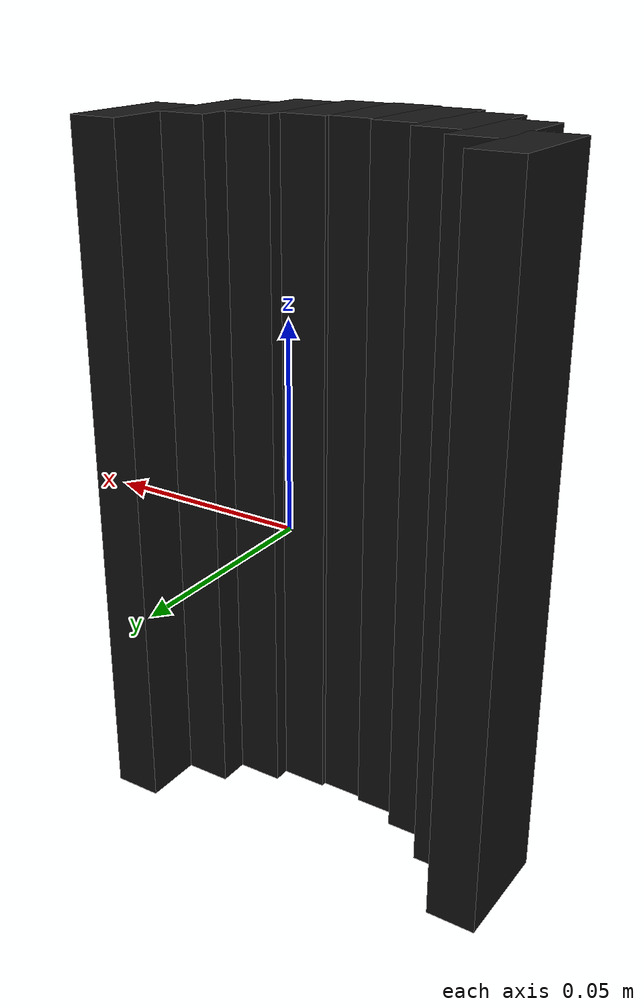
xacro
<?xml version="1.0"?>
<robot xmlns:xacro="http://www.ros.org/wiki/xacro" name="pp_crescent_obstacle">
  <xacro:arg name="height" default="0.18"/>
  <xacro:arg name="color_rgba" default="0.08 0.08 0.08 1"/>

  <link name="base_link"/>

  <xacro:macro name="moon_slice" params="name x y sx sy height">
    <link name="${name}">
      <visual>
        <geometry>
          <box size="${sx} ${sy} ${height}"/>
        </geometry>
        <material name="dark_gray">
          <color rgba="$(arg color_rgba)"/>
        </material>
      </visual>
      <collision>
        <geometry>
          <box size="${sx} ${sy} ${height}"/>
        </geometry>
      </collision>
      <inertial>
        <mass value="0.2"/>
        <inertia ixx="0.001" ixy="0.0" ixz="0.0" iyy="0.001" iyz="0.0" izz="0.001"/>
      </inertial>
    </link>
    <joint name="${name}_joint" type="fixed">
      <parent link="base_link"/>
      <child link="${name}"/>
      <origin xyz="${x} ${y} 0" rpy="0 0 0"/>
    </joint>
  </xacro:macro>

  <!-- Local crescent concavity faces +Y. The PP launch yaw points +Y toward the cube. -->
  <xacro:moon_slice name="slice_0" x="-0.048889" y="-0.010197" sx="0.012833" sy="0.030000" height="$(arg height)"/>
  <xacro:moon_slice name="slice_1" x="-0.036667" y="-0.025995" sx="0.012833" sy="0.030000" height="$(arg height)"/>
  <xacro:moon_slice name="slice_2" x="-0.024444" y="-0.034269" sx="0.012833" sy="0.030000" height="$(arg height)"/>
  <xacro:moon_slice name="slice_3" x="-0.012222" y="-0.038625" sx="0.012833" sy="0.030000" height="$(arg height)"/>
  <xacro:moon_slice name="slice_4" x="0.000000" y="-0.040000" sx="0.012833" sy="0.030000" height="$(arg height)"/>
  <xacro:moon_slice name="slice_5" x="0.012222" y="-0.038625" sx="0.012833" sy="0.030000" height="$(arg height)"/>
  <xacro:moon_slice name="slice_6" x="0.024444" y="-0.034269" sx="0.012833" sy="0.030000" height="$(arg height)"/>
  <xacro:moon_slice name="slice_7" x="0.036667" y="-0.025995" sx="0.012833" sy="0.030000" height="$(arg height)"/>
  <xacro:moon_slice name="slice_8" x="0.048889" y="-0.010197" sx="0.012833" sy="0.030000" height="$(arg height)"/>

  <gazebo>
    <static>true</static>
  </gazebo>
</robot>
